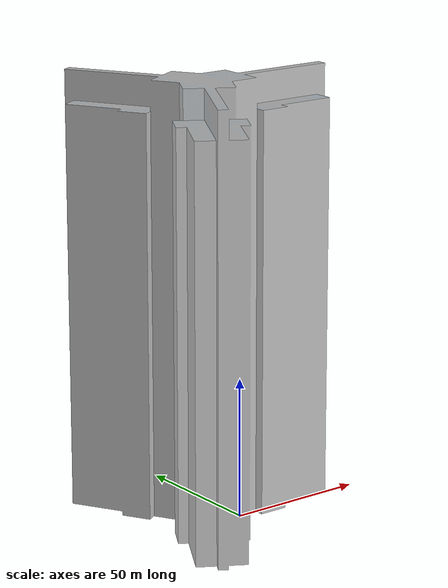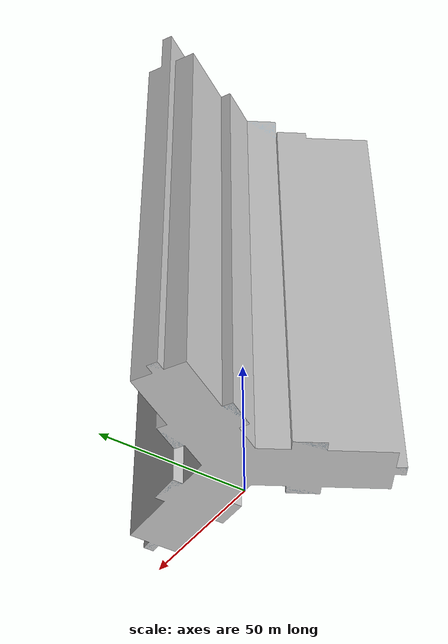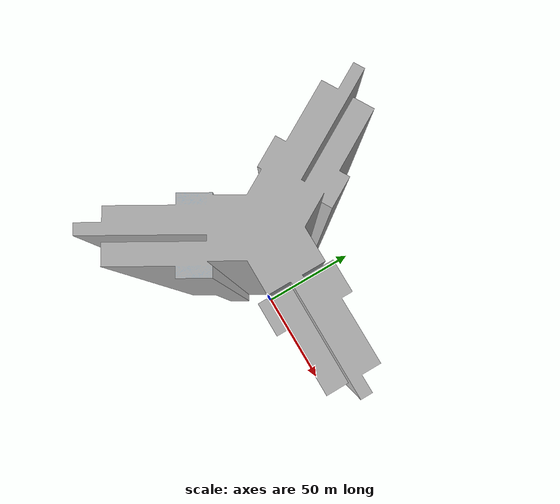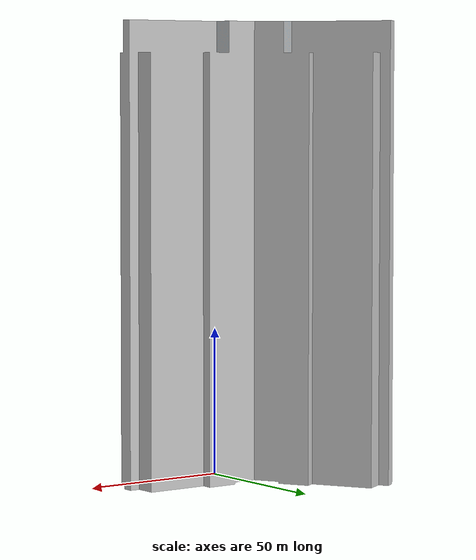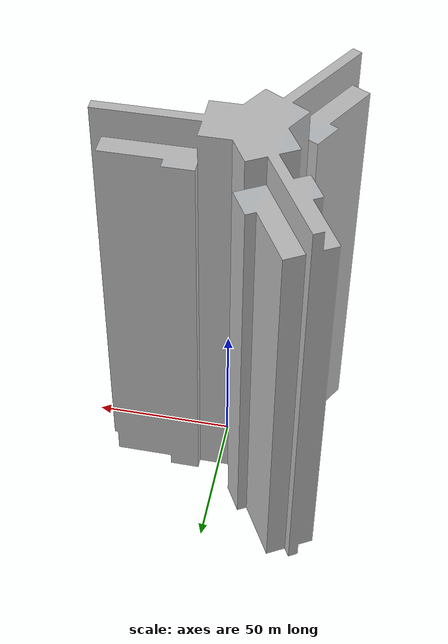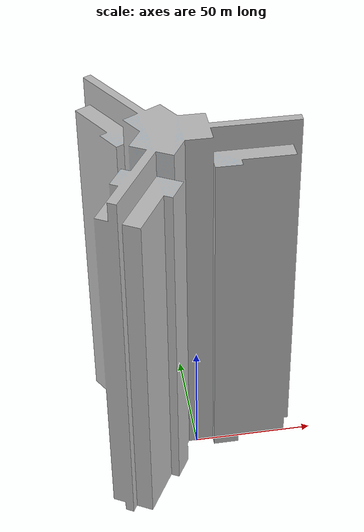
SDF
<?xml version='1.0'?>
<sdf version='1.6'>
  <model name='res4'>
    <link name='link_1'>
      <pose frame=''>8e-06 2e-06 0 0 -0 0</pose>
      <visual name='visual'>
        <pose frame=''>0 0 0 0 -0 0</pose>
        <geometry>
          <mesh>
            <uri>/usr/share/gazebo-9/models/res4/model.dae</uri>
            <scale>1 1 1</scale>
          </mesh>
        </geometry>
        <transparency>0</transparency>
        <cast_shadows>1</cast_shadows>
      </visual>
      <collision name='collision'>
        <laser_retro>0</laser_retro>
        <max_contacts>10</max_contacts>
        <pose frame=''>0 0 0 0 -0 0</pose>
        <geometry>
          <mesh>
            <uri>/usr/share/gazebo-9/models/res4/model.dae</uri>
            <scale>1 1 1</scale>
          </mesh>
        </geometry>
      </collision>
    </link>
    <static>1</static>
  </model>
</sdf>
